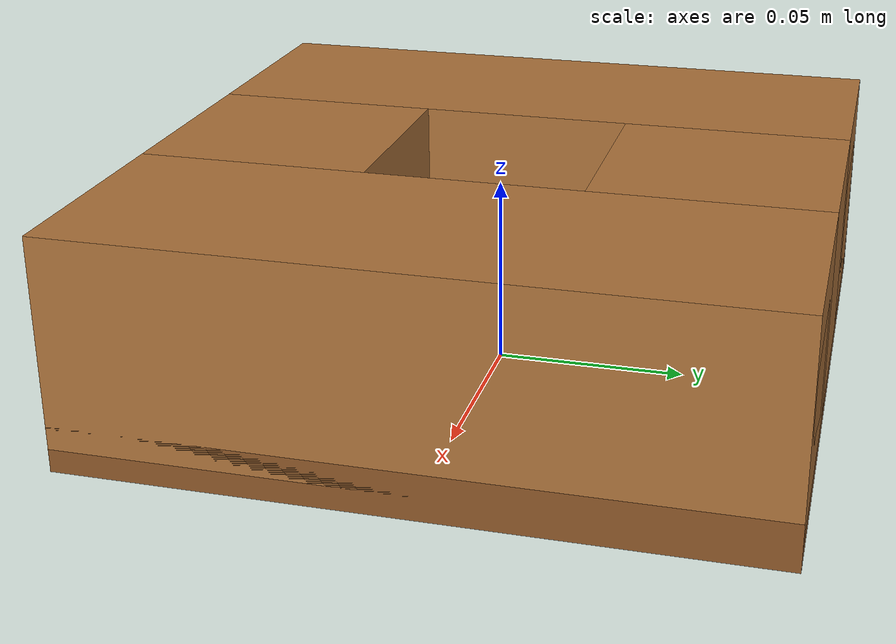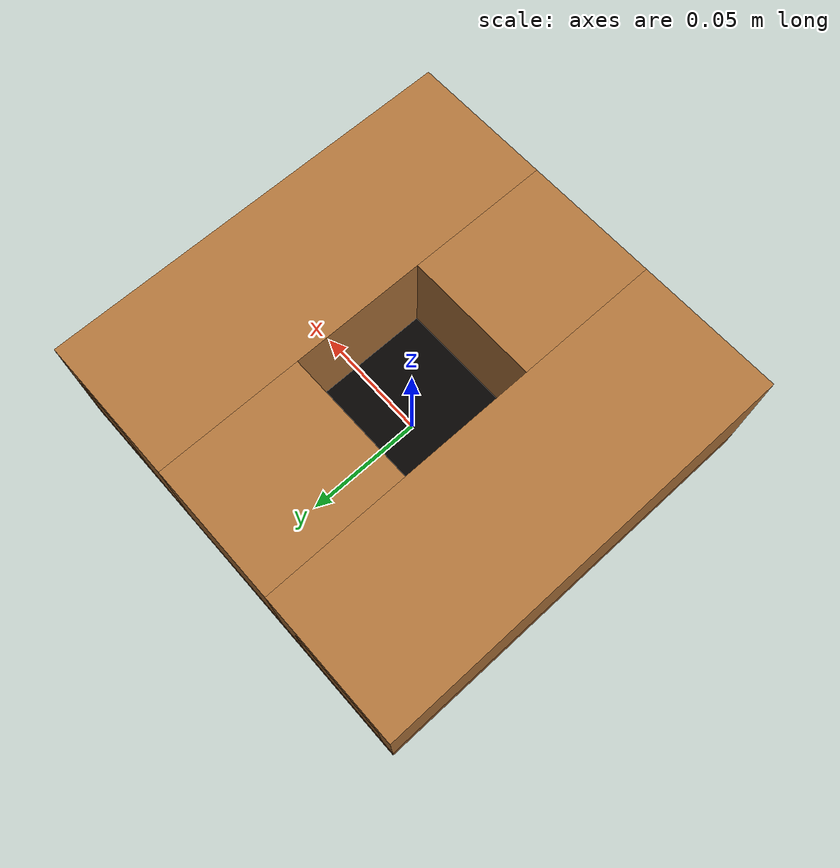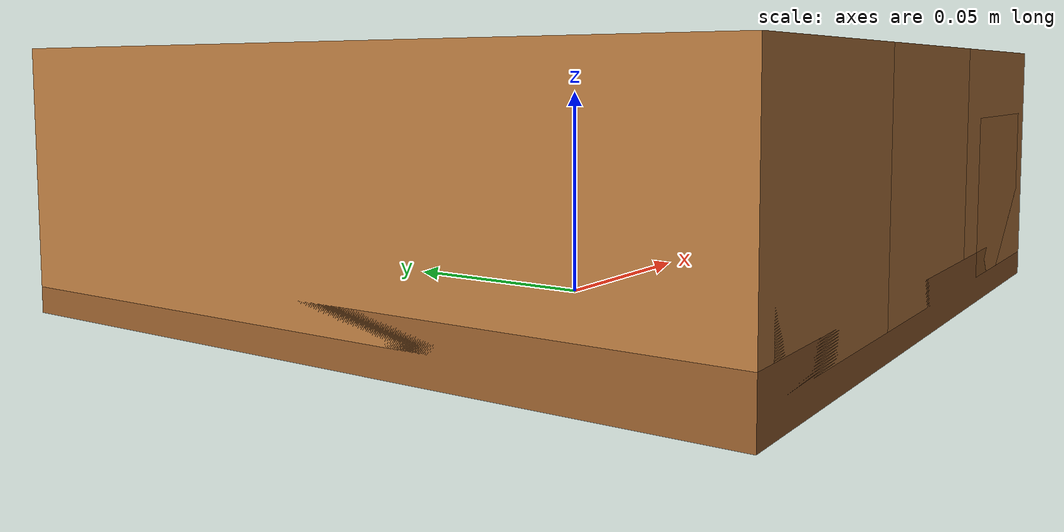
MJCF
<mujoco model="wooden_hole_block">
  <worldbody>
    <body>
      <body name="object">
        <!-- Deep square socket: visible wooden top with a dark matching hole and guide walls. -->
        <site type="box" pos="0 0 0.027" quat="1 0 0 0" size="0.028 0.028 0.030" rgba="0.0 0.8 0.1 0.0" name="contain_region" group="0" />
        <geom type="box" pos="0 0 0.006" size="0.088 0.088 0.006" rgba="0.55 0.34 0.16 1" group="1" contype="0" conaffinity="0" />
        <geom type="box" pos="0 0 0.0125" size="0.028 0.028 0.004" rgba="0.015 0.010 0.006 1" group="1" contype="0" conaffinity="0" />
        <geom type="box" pos="0.058 0 0.033" size="0.030 0.088 0.027" rgba="0.68 0.45 0.23 1" group="1" contype="0" conaffinity="0" />
        <geom type="box" pos="-0.058 0 0.033" size="0.030 0.088 0.027" rgba="0.68 0.45 0.23 1" group="1" contype="0" conaffinity="0" />
        <geom type="box" pos="0 0.058 0.033" size="0.028 0.030 0.027" rgba="0.68 0.45 0.23 1" group="1" contype="0" conaffinity="0" />
        <geom type="box" pos="0 -0.058 0.033" size="0.028 0.030 0.027" rgba="0.68 0.45 0.23 1" group="1" contype="0" conaffinity="0" />
        <geom type="box" pos="0 0 0.006" size="0.088 0.088 0.006" rgba="0.55 0.34 0.16 0.12" density="6000" friction="7.0 1.0 0.1" group="0" />
        <geom type="box" pos="0.061 0 0.025" size="0.021 0.088 0.019" rgba="0.68 0.45 0.23 0.12" density="6000" friction="7.0 1.0 0.1" group="0" />
        <geom type="box" pos="-0.061 0 0.025" size="0.021 0.088 0.019" rgba="0.68 0.45 0.23 0.12" density="6000" friction="7.0 1.0 0.1" group="0" />
        <geom type="box" pos="0 0.061 0.025" size="0.034 0.021 0.019" rgba="0.68 0.45 0.23 0.12" density="6000" friction="7.0 1.0 0.1" group="0" />
        <geom type="box" pos="0 -0.061 0.025" size="0.034 0.021 0.019" rgba="0.68 0.45 0.23 0.12" density="6000" friction="7.0 1.0 0.1" group="0" />
      </body>
      <site rgba="0 0 0 0" size="0.005" pos="0 0 0.000" name="bottom_site" group="0" />
      <site rgba="0 0 0 0" size="0.005" pos="0 0 0.060" name="top_site" group="0" />
      <site rgba="0 0 0 0" size="0.088" pos="0.088 0.088 0.033" name="horizontal_radius_site" group="0" />
    </body>
  </worldbody>
</mujoco>
